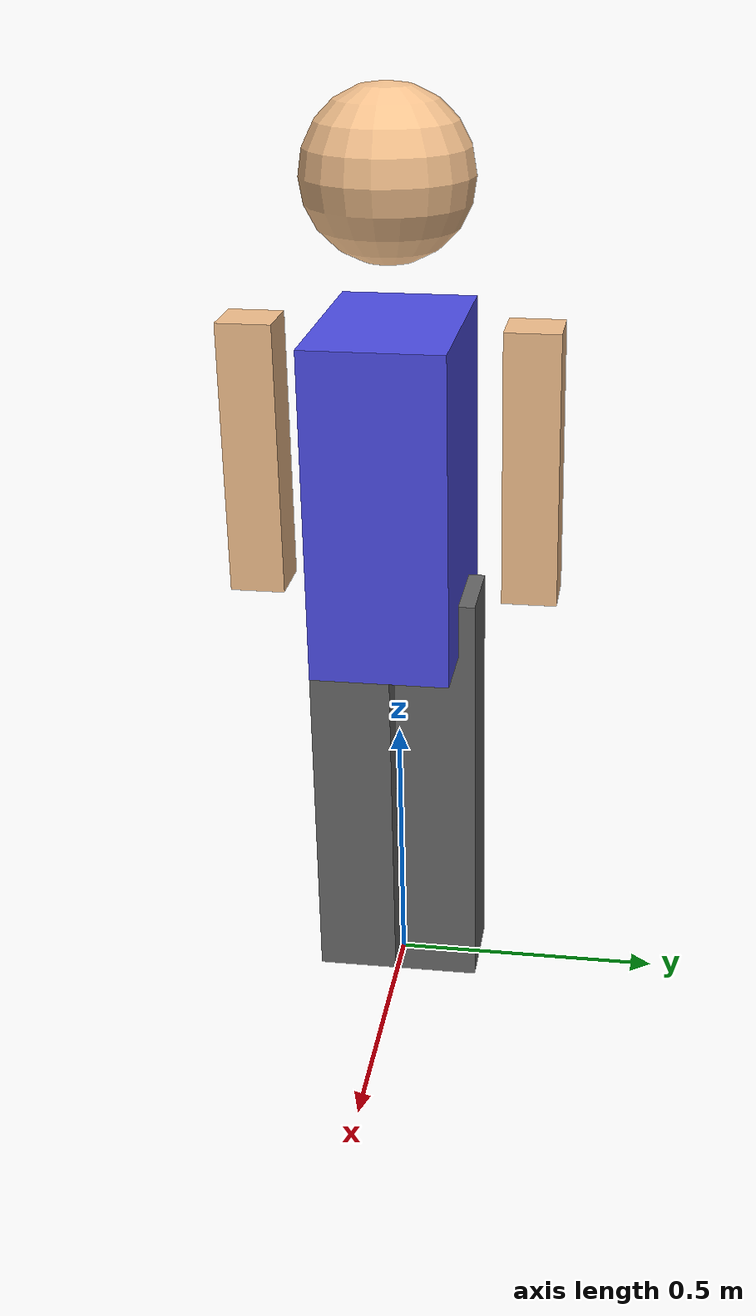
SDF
<?xml version="1.0" ?>
<sdf version="1.9">
  <model name="person">
    <static>true</static>

    <!-- Torso (blue shirt) -->
    <link name="torso">
      <pose>0 0 1.0 0 0 0</pose>
      <visual name="torso_visual">
        <geometry>
          <box><size>0.4 0.25 0.6</size></box>
        </geometry>
        <material>
          <ambient>0.2 0.2 0.8 1</ambient>
          <diffuse>0.3 0.3 0.9 1</diffuse>
        </material>
      </visual>
      <collision name="torso_collision">
        <geometry>
          <box><size>0.4 0.25 0.6</size></box>
        </geometry>
      </collision>
    </link>

    <!-- Head (skin color) -->
    <link name="head">
      <pose>0 0 1.55 0 0 0</pose>
      <visual name="head_visual">
        <geometry>
          <sphere><radius>0.15</radius></sphere>
        </geometry>
        <material>
          <ambient>0.9 0.7 0.5 1</ambient>
          <diffuse>0.95 0.75 0.55 1</diffuse>
        </material>
      </visual>
    </link>

    <!-- Left Leg (dark pants) -->
    <link name="left_leg">
      <pose>0.0 -0.08 0.4 0 0 0</pose>
      <visual name="left_leg_visual">
        <geometry>
          <box><size>0.15 0.15 0.8</size></box>
        </geometry>
        <material>
          <ambient>0.3 0.3 0.3 1</ambient>
          <diffuse>0.4 0.4 0.4 1</diffuse>
        </material>
      </visual>
    </link>

    <!-- Right Leg -->
    <link name="right_leg">
      <pose>0.0 0.08 0.4 0 0 0</pose>
      <visual name="right_leg_visual">
        <geometry>
          <box><size>0.15 0.15 0.8</size></box>
        </geometry>
        <material>
          <ambient>0.3 0.3 0.3 1</ambient>
          <diffuse>0.4 0.4 0.4 1</diffuse>
        </material>
      </visual>
    </link>

    <!-- Left Arm (skin) -->
    <link name="left_arm">
      <pose>0.0 -0.25 1.05 0 0 0</pose>
      <visual name="left_arm_visual">
        <geometry>
          <box><size>0.1 0.1 0.5</size></box>
        </geometry>
        <material>
          <ambient>0.9 0.7 0.5 1</ambient>
          <diffuse>0.95 0.75 0.55 1</diffuse>
        </material>
      </visual>
    </link>

    <!-- Right Arm -->
    <link name="right_arm">
      <pose>0.0 0.25 1.05 0 0 0</pose>
      <visual name="right_arm_visual">
        <geometry>
          <box><size>0.1 0.1 0.5</size></box>
        </geometry>
        <material>
          <ambient>0.9 0.7 0.5 1</ambient>
          <diffuse>0.95 0.75 0.55 1</diffuse>
        </material>
      </visual>
    </link>
  </model>
</sdf>
